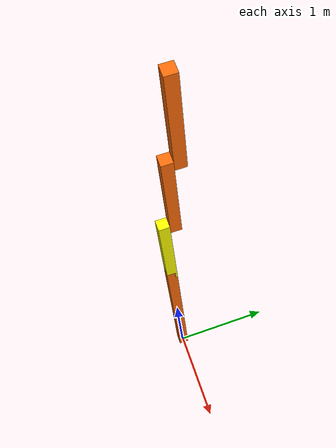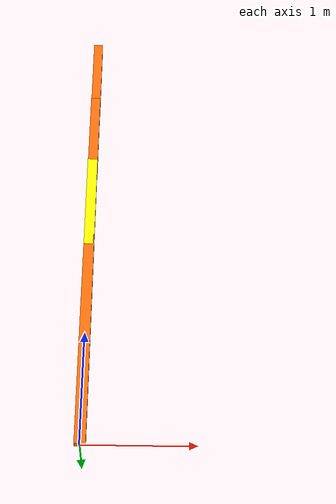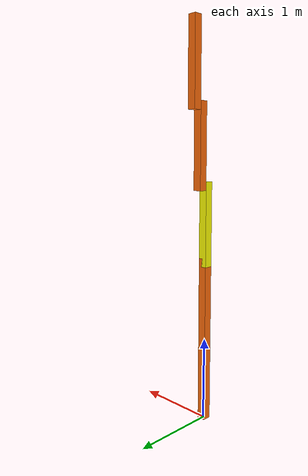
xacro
<?xml version="1.0"?>
<!-- Simple 3-Revolute Arm -->
<!--
Reference and modified from ros2_control_demos
https://github.com/ros-controls/ros2_control_demos
-->

<robot xmlns:xacro="http://www.ros.org/wiki/xacro" name="3dof_robot">

  <xacro:arg name="prefix" default="" />

  <!-- Import simple_3r_arm macro -->
  <xacro:include filename="$(find simple_3r_arm_description)/urdf/simple_3r_arm_description.urdf.xacro" />

  <!-- Import Rviz colors -->
  <xacro:include filename="$(find simple_3r_arm_description)/gazebo/simple_3r_arm.materials.xacro" />

  <!-- Import simple_3r_arm ros2_control description -->
  <xacro:include filename="$(find simple_3r_arm_description)/ros2_control/simple_3r_arm.ros2_control.xacro" />

  <!-- Used for fixing robot -->
  <link name="world"/>
  <gazebo reference="world">
    <static>true</static>
  </gazebo>

  <xacro:simple_3r_arm parent="world" prefix="$(arg prefix)">
    <origin xyz="0 0 0" rpy="0 0 0" />
  </xacro:simple_3r_arm>

  <xacro:simple_3r_arm_ros2_control
    name="simple_3r_arm" prefix="$(arg prefix)" />

</robot>

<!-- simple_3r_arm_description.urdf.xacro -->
<!-- Simple 3-Revolute Arm -->
<!--
Reference and modified from ros2_control_demos
https://github.com/ros-controls/ros2_control_demos
-->

<robot xmlns:xacro="http://www.ros.org/wiki/xacro">

  <xacro:macro name="simple_3r_arm" params="parent prefix *origin">

    <!-- Constants for robot dimensions -->
    <xacro:property name="mass" value="1" /> <!-- arbitrary value for mass -->
    <xacro:property name="heightBase" value="2" /> <!-- Base Link -->
    <xacro:property name="height1" value="1" /> <!-- Link 1 -->
    <xacro:property name="height2" value="1" /> <!-- Link 2 -->
    <xacro:property name="height3" value="1" /> <!-- Link 3 -->
    <xacro:property name="width" value="0.1" /> <!-- Square dimensions (widthxwidth) of beams -->
    <xacro:property name="axel_offset" value="0.05" /> <!-- Space btw top of beam and the each joint -->

    <!-- Base Link -->
    <joint name="${prefix}base_joint" type="fixed">
      <xacro:insert_block name="origin" />
      <parent link="${parent}"/>
      <child link="${prefix}base_link" />
    </joint>
    <link name="${prefix}base_link">
      <collision>
        <origin xyz="0 0 ${heightBase/2}" rpy="0 0 0"/>
        <geometry>
          <box size="${width} ${width} ${heightBase}"/>
        </geometry>
      </collision>

      <visual>
        <origin xyz="0 0 ${heightBase/2}" rpy="0 0 0"/>
        <geometry>
          <box size="${width} ${width} ${heightBase}"/>
        </geometry>
        <material name="orange"/>
      </visual>

      <inertial>
        <origin xyz="0 0 ${heightBase/2}" rpy="0 0 0"/>
        <mass value="${mass}"/>
        <inertia ixx="${mass / 12.0 * (width*width + heightBase*heightBase)}" ixy="0.0" ixz="0.0"
                 iyy="${mass / 12.0 * (heightBase*heightBase + width*width)}" iyz="0.0"
                 izz="${mass / 12.0 * (width*width + width*width)}"/>
      </inertial>
    </link>

    <!-- Link 1 -->
    <joint name="${prefix}joint1" type="continuous">
      <parent link="${prefix}base_link"/>
      <child link="${prefix}link1"/>
      <origin xyz="0 0 ${heightBase - axel_offset}" rpy="0 0 0"/>
      <axis xyz="0 0 1"/>
      <dynamics damping="0.7"/>
    </joint>
    <link name="${prefix}link1">
      <collision>
        <origin xyz="0 0 ${height1/2 - axel_offset}" rpy="0 0 0"/>
        <geometry>
          <box size="${width} ${width} ${height1}"/>
        </geometry>
      </collision>

      <visual>
        <origin xyz="0 0 ${height1/2 - axel_offset}" rpy="0 0 0"/>
        <geometry>
          <box size="${width} ${width} ${height1}"/>
        </geometry>
        <material name="yellow"/>
      </visual>

      <inertial>
        <origin xyz="0 0 ${height1/2 - axel_offset}" rpy="0 0 0"/>
        <mass value="${mass}"/>
        <inertia ixx="${mass / 12.0 * (width*width + height1*height1)}" ixy="0.0" ixz="0.0"
                 iyy="${mass / 12.0 * (height1*height1 + width*width)}" iyz="0.0"
                 izz="${mass / 12.0 * (width*width + width*width)}"/>
      </inertial>
    </link>

    <!-- Link 2 -->
    <joint name="${prefix}joint2" type="continuous">
      <parent link="${prefix}link1"/>
      <child link="${prefix}link2"/>
      <origin xyz="0 ${width} ${height1 - axel_offset*2}" rpy="0 0 0"/>
      <axis xyz="0 1 0"/>
      <dynamics damping="0.7"/>
    </joint>
    <link name="${prefix}link2">
      <collision>
        <origin xyz="0 0 ${height2/2 - axel_offset}" rpy="0 0 0"/>
        <geometry>
          <box size="${width} ${width} ${height2}"/>
        </geometry>
      </collision>

      <visual>
        <origin xyz="0 0 ${height2/2 - axel_offset}" rpy="0 0 0"/>
        <geometry>
          <box size="${width} ${width} ${height2}"/>
        </geometry>
        <material name="orange"/>
      </visual>

      <inertial>
        <origin xyz="0 0 ${height2/2 - axel_offset}" rpy="0 0 0"/>
        <mass value="${mass}"/>
        <inertia ixx="${mass / 12.0 * (width*width + height2*height2)}" ixy="0.0" ixz="0.0"
                 iyy="${mass / 12.0 * (height2*height2 + width*width)}" iyz="0.0"
                 izz="${mass / 12.0 * (width*width + width*width)}"/>
      </inertial>
    </link>

    <!-- Link 3 -->
    <joint name="${prefix}joint3" type="continuous">
      <parent link="${prefix}link2"/>
      <child link="${prefix}link3"/>
      <origin xyz="0 ${width} ${height1 - axel_offset*2}" rpy="0 0 0"/>
      <axis xyz="0 1 0"/>
      <dynamics damping="0.7"/>
    </joint>
    <link name="${prefix}link3">
      <collision>
        <origin xyz="0 0 ${height3/2 - axel_offset}" rpy="0 0 0"/>
        <geometry>
          <box size="${width} ${width} ${height3}"/>
        </geometry>
      </collision>

      <visual>
        <origin xyz="0 0 ${height3/2 - axel_offset}" rpy="0 0 0"/>
        <geometry>
          <box size="${width} ${width} ${height3}"/>
        </geometry>
        <material name="orange"/>
      </visual>

      <inertial>
        <origin xyz="0 0 ${height3/2 - axel_offset}" rpy="0 0 0"/>
        <mass value="${mass}"/>
        <inertia ixx="${mass / 12.0 * (width*width + height3*height3)}" ixy="0.0" ixz="0.0"
                 iyy="${mass / 12.0 * (height3*height3 + width*width)}" iyz="0.0"
                 izz="${mass / 12.0 * (width*width + width*width)}"/>
      </inertial>
    </link>

    <!-- Tool Link -->
    <joint name="${prefix}tool_joint" type="fixed">
      <origin xyz="0 0 1" rpy="0 0 0" />
      <parent link="${prefix}link3"/>
      <child link="${prefix}tool_link" />
    </joint>
    <link name="${prefix}tool_link">
    </link>

  </xacro:macro>

</robot>

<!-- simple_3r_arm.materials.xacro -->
<robot>

<!--
Reference and modified from ros2_control_demos
https://github.com/ros-controls/ros2_control_demos
-->

  <material name="black">
    <color rgba="0.0 0.0 0.0 1.0"/>
  </material>

  <material name="blue">
    <color rgba="0.0 0.0 0.8 1.0"/>
  </material>

  <material name="green">
    <color rgba="0.0 0.8 0.0 1.0"/>
  </material>

  <material name="grey">
    <color rgba="0.2 0.2 0.2 1.0"/>
  </material>

  <material name="orange">
    <color rgba="${255/255} ${108/255} ${10/255} 1.0"/>
  </material>

  <material name="brown">
    <color rgba="${222/255} ${207/255} ${195/255} 1.0"/>
  </material>

  <material name="red">
    <color rgba="0.8 0.0 0.0 1.0"/>
  </material>

  <material name="yellow">
    <color rgba="1.0 1.0 0.0 1.0"/>
  </material>

  <material name="white">
    <color rgba="1.0 1.0 1.0 1.0"/>
  </material>

</robot>
